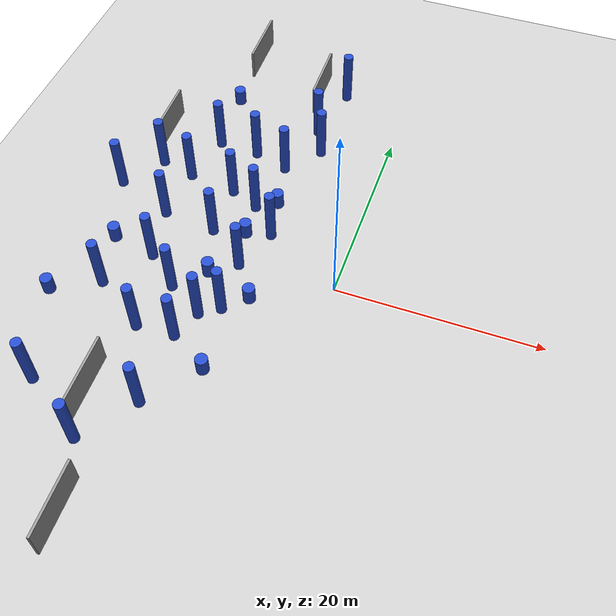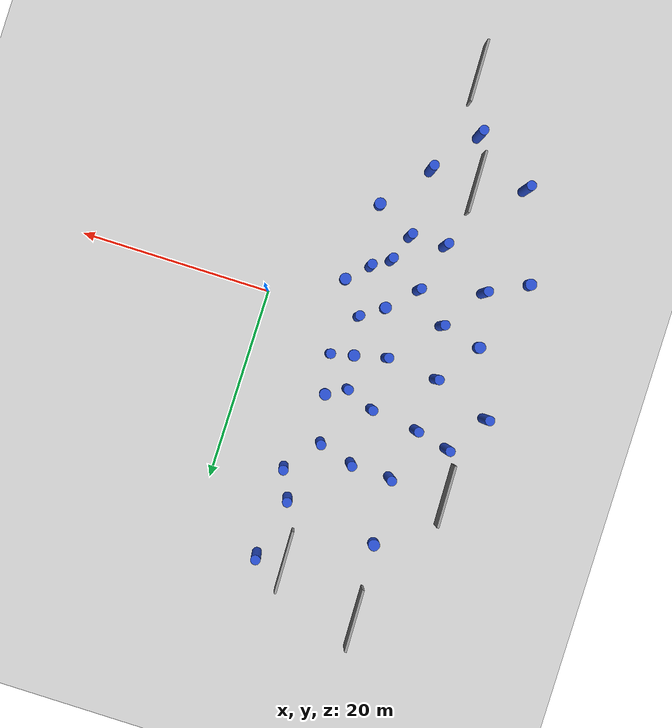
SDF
<sdf version="1.7">
 <world name="default">
  <model name="ground_plane">
   <static>1</static>
   <link name="link">
    <collision name="collision">
     <geometry><plane><normal>0 0 1</normal><size>100 100</size></plane></geometry>
     <surface><friction><ode><mu>100</mu><mu2>50</mu2></ode></friction></surface>
    </collision>
    <visual name="visual">
     <cast_shadows>0</cast_shadows>
     <geometry><plane><normal>0 0 1</normal><size>100 100</size></plane></geometry>
     <material>
      <script><uri>file://media/materials/scripts/gazebo.material</uri><name>Gazebo/Grey</name></script>
     </material>
    </visual>
   </link>
  </model>
  <model name="unit_box_0_0_clone_0_clone_clone_0_clone_clone_clone">
   <static>1</static>
   <pose>-9.88058 25.7727 1.66667 -0.000226 6e-06 0.022264</pose>
   <link name="link">
    <inertial>
     <mass>1</mass>
     <inertia>
      <ixx>0.166667</ixx>
      <ixy>0</ixy>
      <ixz>0</ixz>
      <iyy>0.166667</iyy>
      <iyz>0</iyz>
      <izz>0.166667</izz>
     </inertia>
    </inertial>
    <collision name="collision">
     <geometry><box><size>0.237691 6.53987 3.33454</size></box></geometry>
     <surface><contact><collide_without_contact>1</collide_without_contact></contact></surface>
    </collision>
    <visual name="visual">
     <geometry><box><size>0.237691 6.53987 3.33454</size></box></geometry>
     <material>
      <script><name>Gazebo/Grey</name><uri>file://media/materials/scripts/gazebo.material</uri></script>
     </material>
    </visual>
    <gravity>0</gravity>
   </link>
  </model>
  <model name="unit_box_0_0_clone_0_clone_clone_0_clone_clone_clone_1">
   <static>1</static>
   <pose>-16.9775 -16.9385 1.66667 -0.000226 6e-06 0.022264</pose>
   <link name="link">
    <inertial>
     <mass>1</mass>
     <inertia>
      <ixx>0.166667</ixx>
      <ixy>0</ixy>
      <ixz>0</ixz>
      <iyy>0.166667</iyy>
      <iyz>0</iyz>
      <izz>0.166667</izz>
     </inertia>
    </inertial>
    <collision name="collision">
     <geometry><box><size>0.237691 6.53987 3.33454</size></box></geometry>
     <surface><contact><collide_without_contact>1</collide_without_contact></contact></surface>
    </collision>
    <visual name="visual">
     <geometry><box><size>0.237691 6.53987 3.33454</size></box></geometry>
     <material>
      <script><name>Gazebo/Grey</name><uri>file://media/materials/scripts/gazebo.material</uri></script>
     </material>
    </visual>
    <gravity>0</gravity>
   </link>
  </model>
  <model name="unit_box_0_0_clone_0_clone_clone_0_clone_clone_clone_2">
   <static>1</static>
   <pose>-23.5976 14.4859 1.66667 -0.000226 6e-06 0.022264</pose>
   <link name="link">
    <inertial>
     <mass>1</mass>
     <inertia>
      <ixx>0.166667</ixx>
      <ixy>0</ixy>
      <ixz>0</ixz>
      <iyy>0.166667</iyy>
      <iyz>0</iyz>
      <izz>0.166667</izz>
     </inertia>
    </inertial>
    <collision name="collision">
     <geometry><box><size>0.237691 6.53987 3.33454</size></box></geometry>
     <surface><contact><collide_without_contact>1</collide_without_contact></contact></surface>
    </collision>
    <visual name="visual">
     <geometry><box><size>0.237691 6.53987 3.33454</size></box></geometry>
     <material>
      <script><name>Gazebo/Grey</name><uri>file://media/materials/scripts/gazebo.material</uri></script>
     </material>
    </visual>
    <gravity>0</gravity>
   </link>
  </model>
  <model name="unit_box_0_0_clone_0_clone_clone_0_clone_clone_clone_3">
   <static>1</static>
   <pose>-18.4558 29.2742 1.66667 -0.000226 6e-06 0.022264</pose>
   <link name="link">
    <inertial>
     <mass>1</mass>
     <inertia>
      <ixx>0.166667</ixx>
      <ixy>0</ixy>
      <ixz>0</ixz>
      <iyy>0.166667</iyy>
      <iyz>0</iyz>
      <izz>0.166667</izz>
     </inertia>
    </inertial>
    <collision name="collision">
     <geometry><box><size>0.237691 6.53987 3.33454</size></box></geometry>
     <surface><contact><collide_without_contact>1</collide_without_contact></contact></surface>
    </collision>
    <visual name="visual">
     <geometry><box><size>0.237691 6.53987 3.33454</size></box></geometry>
     <material>
      <script><name>Gazebo/Grey</name><uri>file://media/materials/scripts/gazebo.material</uri></script>
     </material>
    </visual>
    <gravity>0</gravity>
   </link>
  </model>
  <model name="unit_box_0_0_clone_0_clone_clone_0_clone_clone_clone_4">
   <static>1</static>
   <pose>-13.7812 -27.768 1.66667 -0.000226 6e-06 0.022264</pose>
   <link name="link">
    <inertial>
     <mass>1</mass>
     <inertia>
      <ixx>0.166667</ixx>
      <ixy>0</ixy>
      <ixz>0</ixz>
      <iyy>0.166667</iyy>
      <iyz>0</iyz>
      <izz>0.166667</izz>
     </inertia>
    </inertial>
    <collision name="collision">
     <geometry><box><size>0.237691 6.53987 3.33454</size></box></geometry>
     <surface><contact><collide_without_contact>1</collide_without_contact></contact></surface>
    </collision>
    <visual name="visual">
     <geometry><box><size>0.237691 6.53987 3.33454</size></box></geometry>
     <material>
      <script><name>Gazebo/Grey</name><uri>file://media/materials/scripts/gazebo.material</uri></script>
     </material>
    </visual>
    <gravity>0</gravity>
   </link>
  </model>
  <model name="unit_cylinder_0_clone_11">
   <static>1</static>
   <pose>-18.6647 9.01289 3 0 -0 0.001073</pose>
   <link name="link">
    <inertial>
     <mass>1</mass>
     <inertia><ixx>0.145833</ixx><ixy>0</ixy><ixz>0</ixz><iyy>0.145833</iyy><iyz>0</iyz><izz>0.125</izz></inertia>
    </inertial>
    <collision name="collision">
     <geometry><cylinder><radius>0.5</radius><length>6</length></cylinder></geometry>
     <surface><contact><collide_without_contact>1</collide_without_contact></contact></surface>
    </collision>
    <visual name="visual">
     <geometry><cylinder><radius>0.5</radius><length>6</length></cylinder></geometry>
     <material>
      <script><name>Gazebo/Blue</name><uri>file://media/materials/scripts/gazebo.material</uri></script>
     </material>
    </visual>
    <gravity>0</gravity>
   </link>
  </model>
  <model name="unit_cylinder_0_clone_17">
   <static>1</static>
   <pose>-15.8005 -21.5961 3 0 -0 0.001073</pose>
   <link name="link">
    <inertial>
     <mass>1</mass>
     <inertia><ixx>0.145833</ixx><ixy>0</ixy><ixz>0</ixz><iyy>0.145833</iyy><iyz>0</iyz><izz>0.125</izz></inertia>
    </inertial>
    <collision name="collision">
     <geometry><cylinder><radius>0.5</radius><length>6</length></cylinder></geometry>
     <surface><contact><collide_without_contact>1</collide_without_contact></contact></surface>
    </collision>
    <visual name="visual">
     <geometry><cylinder><radius>0.5</radius><length>6</length></cylinder></geometry>
     <material>
      <script><name>Gazebo/Blue</name><uri>file://media/materials/scripts/gazebo.material</uri></script>
     </material>
    </visual>
    <gravity>0</gravity>
   </link>
  </model>
  <model name="unit_cylinder_0_clone_18">
   <static>1</static>
   <pose>-21.0697 -6.42311 3 0 -0 0.001073</pose>
   <link name="link">
    <inertial>
     <mass>1</mass>
     <inertia><ixx>0.145833</ixx><ixy>0</ixy><ixz>0</ixz><iyy>0.145833</iyy><iyz>0</iyz><izz>0.125</izz></inertia>
    </inertial>
    <collision name="collision">
     <geometry><cylinder><radius>0.5</radius><length>6</length></cylinder></geometry>
     <surface><contact><collide_without_contact>1</collide_without_contact></contact></surface>
    </collision>
    <visual name="visual">
     <geometry><cylinder><radius>0.5</radius><length>6</length></cylinder></geometry>
     <material>
      <script><name>Gazebo/Blue</name><uri>file://media/materials/scripts/gazebo.material</uri></script>
     </material>
    </visual>
    <gravity>0</gravity>
   </link>
  </model>
  <model name="unit_cylinder_0_clone_58">
   <static>1</static>
   <pose>-9.77888 13.1498 3 0 -0 0.001073</pose>
   <link name="link">
    <inertial>
     <mass>1</mass>
     <inertia><ixx>0.145833</ixx><ixy>0</ixy><ixz>0</ixz><iyy>0.145833</iyy><iyz>0</iyz><izz>0.125</izz></inertia>
    </inertial>
    <collision name="collision">
     <geometry><cylinder><radius>0.5</radius><length>6</length></cylinder></geometry>
     <surface><contact><collide_without_contact>1</collide_without_contact></contact></surface>
    </collision>
    <visual name="visual">
     <geometry><cylinder><radius>0.5</radius><length>6</length></cylinder></geometry>
     <material>
      <script><name>Gazebo/Blue</name><uri>file://media/materials/scripts/gazebo.material</uri></script>
     </material>
    </visual>
    <gravity>0</gravity>
   </link>
  </model>
  <model name="unit_cylinder_1_clone_10">
   <static>1</static>
   <pose>-8.78291 8.32938 0.9 0 -0 0.001073</pose>
   <link name="link">
    <inertial>
     <mass>1</mass>
     <inertia><ixx>0.145833</ixx><ixy>0</ixy><ixz>0</ixz><iyy>0.145833</iyy><iyz>0</iyz><izz>0.125</izz></inertia>
    </inertial>
    <collision name="collision">
     <geometry><cylinder><radius>0.6</radius><length>1.8</length></cylinder></geometry>
     <surface><contact><collide_without_contact>1</collide_without_contact></contact></surface>
    </collision>
    <visual name="visual">
     <geometry><cylinder><radius>0.6</radius><length>1.8</length></cylinder></geometry>
     <material>
      <script><name>Gazebo/Blue</name><uri>file://media/materials/scripts/gazebo.material</uri></script>
     </material>
    </visual>
    <gravity>0</gravity>
   </link>
  </model>
  <model name="unit_cylinder_1_clone_11">
   <static>1</static>
   <pose>-12.0224 -2.00419 0.9 0 -0 0.001073</pose>
   <link name="link">
    <inertial>
     <mass>1</mass>
     <inertia><ixx>0.145833</ixx><ixy>0</ixy><ixz>0</ixz><iyy>0.145833</iyy><iyz>0</iyz><izz>0.125</izz></inertia>
    </inertial>
    <collision name="collision">
     <geometry><cylinder><radius>0.6</radius><length>1.8</length></cylinder></geometry>
     <surface><contact><collide_without_contact>1</collide_without_contact></contact></surface>
    </collision>
    <visual name="visual">
     <geometry><cylinder><radius>0.6</radius><length>1.8</length></cylinder></geometry>
     <material>
      <script><name>Gazebo/Blue</name><uri>file://media/materials/scripts/gazebo.material</uri></script>
     </material>
    </visual>
    <gravity>0</gravity>
   </link>
  </model>
  <model name="unit_cylinder_1_clone_12">
   <static>1</static>
   <pose>-8.28835 -12.0056 0.9 0 -0 0.001073</pose>
   <link name="link">
    <inertial>
     <mass>1</mass>
     <inertia><ixx>0.145833</ixx><ixy>0</ixy><ixz>0</ixz><iyy>0.145833</iyy><iyz>0</iyz><izz>0.125</izz></inertia>
    </inertial>
    <collision name="collision">
     <geometry><cylinder><radius>0.6</radius><length>1.8</length></cylinder></geometry>
     <surface><contact><collide_without_contact>1</collide_without_contact></contact></surface>
    </collision>
    <visual name="visual">
     <geometry><cylinder><radius>0.6</radius><length>1.8</length></cylinder></geometry>
     <material>
      <script><name>Gazebo/Blue</name><uri>file://media/materials/scripts/gazebo.material</uri></script>
     </material>
    </visual>
    <gravity>0</gravity>
   </link>
  </model>
  <model name="unit_cylinder_1_clone_13">
   <static>1</static>
   <pose>-18.1805 21.517 0.9 0 -0 0.001073</pose>
   <link name="link">
    <inertial>
     <mass>1</mass>
     <inertia><ixx>0.145833</ixx><ixy>0</ixy><ixz>0</ixz><iyy>0.145833</iyy><iyz>0</iyz><izz>0.125</izz></inertia>
    </inertial>
    <collision name="collision">
     <geometry><cylinder><radius>0.6</radius><length>1.8</length></cylinder></geometry>
     <surface><contact><collide_without_contact>1</collide_without_contact></contact></surface>
    </collision>
    <visual name="visual">
     <geometry><cylinder><radius>0.6</radius><length>1.8</length></cylinder></geometry>
     <material>
      <script><name>Gazebo/Blue</name><uri>file://media/materials/scripts/gazebo.material</uri></script>
     </material>
    </visual>
    <gravity>0</gravity>
   </link>
  </model>
  <model name="unit_cylinder_0_clone_3_clone_2">
   <static>1</static>
   <pose>-13.6112 2.87137 3 0 -0 0.001073</pose>
   <link name="link">
    <inertial>
     <mass>1</mass>
     <inertia><ixx>0.145833</ixx><ixy>0</ixy><ixz>0</ixz><iyy>0.145833</iyy><iyz>0</iyz><izz>0.125</izz></inertia>
    </inertial>
    <collision name="collision">
     <geometry><cylinder><radius>0.5</radius><length>6</length></cylinder></geometry>
     <surface><contact><collide_without_contact>1</collide_without_contact></contact></surface>
    </collision>
    <visual name="visual">
     <geometry><cylinder><radius>0.5</radius><length>6</length></cylinder></geometry>
     <material>
      <script><name>Gazebo/Blue</name><uri>file://media/materials/scripts/gazebo.material</uri></script>
     </material>
    </visual>
    <gravity>0</gravity>
   </link>
  </model>
  <model name="unit_cylinder_0_clone_3_clone_3">
   <static>1</static>
   <pose>-15.8614 -9.81445 3 0 -0 0.001073</pose>
   <link name="link">
    <inertial>
     <mass>1</mass>
     <inertia><ixx>0.145833</ixx><ixy>0</ixy><ixz>0</ixz><iyy>0.145833</iyy><iyz>0</iyz><izz>0.125</izz></inertia>
    </inertial>
    <collision name="collision">
     <geometry><cylinder><radius>0.5</radius><length>6</length></cylinder></geometry>
     <surface><contact><collide_without_contact>1</collide_without_contact></contact></surface>
    </collision>
    <visual name="visual">
     <geometry><cylinder><radius>0.5</radius><length>6</length></cylinder></geometry>
     <material>
      <script><name>Gazebo/Blue</name><uri>file://media/materials/scripts/gazebo.material</uri></script>
     </material>
    </visual>
    <gravity>0</gravity>
   </link>
  </model>
  <model name="unit_cylinder_0_clone_3_clone_15">
   <static>1</static>
   <pose>-19.0398 3.44436 3 0 -0 0.001073</pose>
   <link name="link">
    <inertial>
     <mass>1</mass>
     <inertia><ixx>0.145833</ixx><ixy>0</ixy><ixz>0</ixz><iyy>0.145833</iyy><iyz>0</iyz><izz>0.125</izz></inertia>
    </inertial>
    <collision name="collision">
     <geometry><cylinder><radius>0.5</radius><length>6</length></cylinder></geometry>
     <surface><contact><collide_without_contact>1</collide_without_contact></contact></surface>
    </collision>
    <visual name="visual">
     <geometry><cylinder><radius>0.5</radius><length>6</length></cylinder></geometry>
     <material>
      <script><name>Gazebo/Blue</name><uri>file://media/materials/scripts/gazebo.material</uri></script>
     </material>
    </visual>
    <gravity>0</gravity>
   </link>
  </model>
  <model name="unit_cylinder_1_clone_19_clone_0">
   <static>1</static>
   <pose>-7.20572 -3.59145 0.9 0 -0 0.001073</pose>
   <link name="link">
    <inertial>
     <mass>1</mass>
     <inertia><ixx>0.145833</ixx><ixy>0</ixy><ixz>0</ixz><iyy>0.145833</iyy><iyz>0</iyz><izz>0.125</izz></inertia>
    </inertial>
    <collision name="collision">
     <geometry><cylinder><radius>0.6</radius><length>1.8</length></cylinder></geometry>
     <surface><contact><collide_without_contact>1</collide_without_contact></contact></surface>
    </collision>
    <visual name="visual">
     <geometry><cylinder><radius>0.6</radius><length>1.8</length></cylinder></geometry>
     <material>
      <script><name>Gazebo/Blue</name><uri>file://media/materials/scripts/gazebo.material</uri></script>
     </material>
    </visual>
    <gravity>0</gravity>
   </link>
  </model>
  <model name="unit_cylinder_1_clone_19_clone_7">
   <static>1</static>
   <pose>-22.4422 -1 0.9 0 -0 0.001073</pose>
   <link name="link">
    <inertial>
     <mass>1</mass>
     <inertia><ixx>0.145833</ixx><ixy>0</ixy><ixz>0</ixz><iyy>0.145833</iyy><iyz>0</iyz><izz>0.125</izz></inertia>
    </inertial>
    <collision name="collision">
     <geometry><cylinder><radius>0.6</radius><length>1.8</length></cylinder></geometry>
     <surface><contact><collide_without_contact>1</collide_without_contact></contact></surface>
    </collision>
    <visual name="visual">
     <geometry><cylinder><radius>0.6</radius><length>1.8</length></cylinder></geometry>
     <material>
      <script><name>Gazebo/Blue</name><uri>file://media/materials/scripts/gazebo.material</uri></script>
     </material>
    </visual>
    <gravity>0</gravity>
   </link>
  </model>
  <model name="unit_cylinder_1_clone_19_clone_8">
   <static>1</static>
   <pose>-25.4789 -8.73219 0.9 0 -0 0.001073</pose>
   <link name="link">
    <inertial>
     <mass>1</mass>
     <inertia><ixx>0.145833</ixx><ixy>0</ixy><ixz>0</ixz><iyy>0.145833</iyy><iyz>0</iyz><izz>0.125</izz></inertia>
    </inertial>
    <collision name="collision">
     <geometry><cylinder><radius>0.6</radius><length>1.8</length></cylinder></geometry>
     <surface><contact><collide_without_contact>1</collide_without_contact></contact></surface>
    </collision>
    <visual name="visual">
     <geometry><cylinder><radius>0.6</radius><length>1.8</length></cylinder></geometry>
     <material>
      <script><name>Gazebo/Blue</name><uri>file://media/materials/scripts/gazebo.material</uri></script>
     </material>
    </visual>
    <gravity>0</gravity>
   </link>
  </model>
  <model name="unit_cylinder_1_clone_19_clone_14">
   <static>1</static>
   <pose>-10.4201 3.62822 0.9 0 -0 0.001073</pose>
   <link name="link">
    <inertial>
     <mass>1</mass>
     <inertia><ixx>0.145833</ixx><ixy>0</ixy><ixz>0</ixz><iyy>0.145833</iyy><iyz>0</iyz><izz>0.125</izz></inertia>
    </inertial>
    <collision name="collision">
     <geometry><cylinder><radius>0.6</radius><length>1.8</length></cylinder></geometry>
     <surface><contact><collide_without_contact>1</collide_without_contact></contact></surface>
    </collision>
    <visual name="visual">
     <geometry><cylinder><radius>0.6</radius><length>1.8</length></cylinder></geometry>
     <material>
      <script><name>Gazebo/Blue</name><uri>file://media/materials/scripts/gazebo.material</uri></script>
     </material>
    </visual>
    <gravity>0</gravity>
   </link>
  </model>
  <model name="unit_cylinder_0_clone_3_clone_clone_0">
   <static>1</static>
   <pose>-12.133 -9.66191 3 0 -0 0.001073</pose>
   <link name="link">
    <inertial>
     <mass>1</mass>
     <inertia><ixx>0.145833</ixx><ixy>0</ixy><ixz>0</ixz><iyy>0.145833</iyy><iyz>0</iyz><izz>0.125</izz></inertia>
    </inertial>
    <collision name="collision">
     <geometry><cylinder><radius>0.5</radius><length>6</length></cylinder></geometry>
     <surface><contact><collide_without_contact>1</collide_without_contact></contact></surface>
    </collision>
    <visual name="visual">
     <geometry><cylinder><radius>0.5</radius><length>6</length></cylinder></geometry>
     <material>
      <script><name>Gazebo/Blue</name><uri>file://media/materials/scripts/gazebo.material</uri></script>
     </material>
    </visual>
    <gravity>0</gravity>
   </link>
  </model>
  <model name="unit_cylinder_0_clone_3_clone_clone_1">
   <static>1</static>
   <pose>-13.6781 8.34432 3 0 -0 0.001073</pose>
   <link name="link">
    <inertial>
     <mass>1</mass>
     <inertia><ixx>0.145833</ixx><ixy>0</ixy><ixz>0</ixz><iyy>0.145833</iyy><iyz>0</iyz><izz>0.125</izz></inertia>
    </inertial>
    <collision name="collision">
     <geometry><cylinder><radius>0.5</radius><length>6</length></cylinder></geometry>
     <surface><contact><collide_without_contact>1</collide_without_contact></contact></surface>
    </collision>
    <visual name="visual">
     <geometry><cylinder><radius>0.5</radius><length>6</length></cylinder></geometry>
     <material>
      <script><name>Gazebo/Blue</name><uri>file://media/materials/scripts/gazebo.material</uri></script>
     </material>
    </visual>
    <gravity>0</gravity>
   </link>
  </model>
  <model name="unit_cylinder_0_clone_3_clone_clone_4">
   <static>1</static>
   <pose>-6.96125 16.6675 3 0 -0 0.001073</pose>
   <link name="link">
    <inertial>
     <mass>1</mass>
     <inertia><ixx>0.145833</ixx><ixy>0</ixy><ixz>0</ixz><iyy>0.145833</iyy><iyz>0</iyz><izz>0.125</izz></inertia>
    </inertial>
    <collision name="collision">
     <geometry><cylinder><radius>0.5</radius><length>6</length></cylinder></geometry>
     <surface><contact><collide_without_contact>1</collide_without_contact></contact></surface>
    </collision>
    <visual name="visual">
     <geometry><cylinder><radius>0.5</radius><length>6</length></cylinder></geometry>
     <material>
      <script><name>Gazebo/Blue</name><uri>file://media/materials/scripts/gazebo.material</uri></script>
     </material>
    </visual>
    <gravity>0</gravity>
   </link>
  </model>
  <model name="unit_cylinder_0_clone_3_clone_clone_10">
   <static>1</static>
   <pose>-14.631 -4.6998 3 0 -0 0.001073</pose>
   <link name="link">
    <inertial>
     <mass>1</mass>
     <inertia><ixx>0.145833</ixx><ixy>0</ixy><ixz>0</ixz><iyy>0.145833</iyy><iyz>0</iyz><izz>0.125</izz></inertia>
    </inertial>
    <collision name="collision">
     <geometry><cylinder><radius>0.5</radius><length>6</length></cylinder></geometry>
     <surface><contact><collide_without_contact>1</collide_without_contact></contact></surface>
    </collision>
    <visual name="visual">
     <geometry><cylinder><radius>0.5</radius><length>6</length></cylinder></geometry>
     <material>
      <script><name>Gazebo/Blue</name><uri>file://media/materials/scripts/gazebo.material</uri></script>
     </material>
    </visual>
    <gravity>0</gravity>
   </link>
  </model>
  <model name="unit_cylinder_0_clone_3_clone_clone_15">
   <static>1</static>
   <pose>-7.9678 4.19694 3 0 -0 0.001073</pose>
   <link name="link">
    <inertial>
     <mass>1</mass>
     <inertia><ixx>0.145833</ixx><ixy>0</ixy><ixz>0</ixz><iyy>0.145833</iyy><iyz>0</iyz><izz>0.125</izz></inertia>
    </inertial>
    <collision name="collision">
     <geometry><cylinder><radius>0.5</radius><length>6</length></cylinder></geometry>
     <surface><contact><collide_without_contact>1</collide_without_contact></contact></surface>
    </collision>
    <visual name="visual">
     <geometry><cylinder><radius>0.5</radius><length>6</length></cylinder></geometry>
     <material>
      <script><name>Gazebo/Blue</name><uri>file://media/materials/scripts/gazebo.material</uri></script>
     </material>
    </visual>
    <gravity>0</gravity>
   </link>
  </model>
  <model name="unit_cylinder_0_clone_3_clone_clone_16">
   <static>1</static>
   <pose>-12.1437 -16.7808 3 0 -0 0.001073</pose>
   <link name="link">
    <inertial>
     <mass>1</mass>
     <inertia><ixx>0.145833</ixx><ixy>0</ixy><ixz>0</ixz><iyy>0.145833</iyy><iyz>0</iyz><izz>0.125</izz></inertia>
    </inertial>
    <collision name="collision">
     <geometry><cylinder><radius>0.5</radius><length>6</length></cylinder></geometry>
     <surface><contact><collide_without_contact>1</collide_without_contact></contact></surface>
    </collision>
    <visual name="visual">
     <geometry><cylinder><radius>0.5</radius><length>6</length></cylinder></geometry>
     <material>
      <script><name>Gazebo/Blue</name><uri>file://media/materials/scripts/gazebo.material</uri></script>
     </material>
    </visual>
    <gravity>0</gravity>
   </link>
  </model>
  <model name="unit_cylinder_0_clone_3_clone_clone_17">
   <static>1</static>
   <pose>-13.3455 14.2455 3 0 -0 0.001073</pose>
   <link name="link">
    <inertial>
     <mass>1</mass>
     <inertia><ixx>0.145833</ixx><ixy>0</ixy><ixz>0</ixz><iyy>0.145833</iyy><iyz>0</iyz><izz>0.125</izz></inertia>
    </inertial>
    <collision name="collision">
     <geometry><cylinder><radius>0.5</radius><length>6</length></cylinder></geometry>
     <surface><contact><collide_without_contact>1</collide_without_contact></contact></surface>
    </collision>
    <visual name="visual">
     <geometry><cylinder><radius>0.5</radius><length>6</length></cylinder></geometry>
     <material>
      <script><name>Gazebo/Blue</name><uri>file://media/materials/scripts/gazebo.material</uri></script>
     </material>
    </visual>
    <gravity>0</gravity>
   </link>
  </model>
  <model name="unit_cylinder_0_clone_3_clone_clone_18">
   <static>1</static>
   <pose>-17.9554 -1.92572 3 0 -0 0.001073</pose>
   <link name="link">
    <inertial>
     <mass>1</mass>
     <inertia><ixx>0.145833</ixx><ixy>0</ixy><ixz>0</ixz><iyy>0.145833</iyy><iyz>0</iyz><izz>0.125</izz></inertia>
    </inertial>
    <collision name="collision">
     <geometry><cylinder><radius>0.5</radius><length>6</length></cylinder></geometry>
     <surface><contact><collide_without_contact>1</collide_without_contact></contact></surface>
    </collision>
    <visual name="visual">
     <geometry><cylinder><radius>0.5</radius><length>6</length></cylinder></geometry>
     <material>
      <script><name>Gazebo/Blue</name><uri>file://media/materials/scripts/gazebo.material</uri></script>
     </material>
    </visual>
    <gravity>0</gravity>
   </link>
  </model>
  <model name="unit_cylinder_0_clone_3_clone_clone_25">
   <static>1</static>
   <pose>-17.5627 14.4548 3 0 -0 0.001073</pose>
   <link name="link">
    <inertial>
     <mass>1</mass>
     <inertia><ixx>0.145833</ixx><ixy>0</ixy><ixz>0</ixz><iyy>0.145833</iyy><iyz>0</iyz><izz>0.125</izz></inertia>
    </inertial>
    <collision name="collision">
     <geometry><cylinder><radius>0.5</radius><length>6</length></cylinder></geometry>
     <surface><contact><collide_without_contact>1</collide_without_contact></contact></surface>
    </collision>
    <visual name="visual">
     <geometry><cylinder><radius>0.5</radius><length>6</length></cylinder></geometry>
     <material>
      <script><name>Gazebo/Blue</name><uri>file://media/materials/scripts/gazebo.material</uri></script>
     </material>
    </visual>
    <gravity>0</gravity>
   </link>
  </model>
  <model name="unit_cylinder_0_clone_3_clone_clone_26">
   <static>1</static>
   <pose>-21.9801 -17.7518 3 0 -0 0.001073</pose>
   <link name="link">
    <inertial>
     <mass>1</mass>
     <inertia><ixx>0.145833</ixx><ixy>0</ixy><ixz>0</ixz><iyy>0.145833</iyy><iyz>0</iyz><izz>0.125</izz></inertia>
    </inertial>
    <collision name="collision">
     <geometry><cylinder><radius>0.5</radius><length>6</length></cylinder></geometry>
     <surface><contact><collide_without_contact>1</collide_without_contact></contact></surface>
    </collision>
    <visual name="visual">
     <geometry><cylinder><radius>0.5</radius><length>6</length></cylinder></geometry>
     <material>
      <script><name>Gazebo/Blue</name><uri>file://media/materials/scripts/gazebo.material</uri></script>
     </material>
    </visual>
    <gravity>0</gravity>
   </link>
  </model>
  <model name="unit_cylinder_0_clone_3_clone_clone_36">
   <static>1</static>
   <pose>-8.27968 19.5969 3 0 -0 0.001073</pose>
   <link name="link">
    <inertial>
     <mass>1</mass>
     <inertia><ixx>0.145833</ixx><ixy>0</ixy><ixz>0</ixz><iyy>0.145833</iyy><iyz>0</iyz><izz>0.125</izz></inertia>
    </inertial>
    <collision name="collision">
     <geometry><cylinder><radius>0.5</radius><length>6</length></cylinder></geometry>
     <surface><contact><collide_without_contact>1</collide_without_contact></contact></surface>
    </collision>
    <visual name="visual">
     <geometry><cylinder><radius>0.5</radius><length>6</length></cylinder></geometry>
     <material>
      <script><name>Gazebo/Blue</name><uri>file://media/materials/scripts/gazebo.material</uri></script>
     </material>
    </visual>
    <gravity>0</gravity>
   </link>
  </model>
  <model name="unit_cylinder_0_clone_3_clone_clone_37">
   <static>1</static>
   <pose>-7 26 3 0 -0 0.001073</pose>
   <link name="link">
    <inertial>
     <mass>1</mass>
     <inertia><ixx>0.145833</ixx><ixy>0</ixy><ixz>0</ixz><iyy>0.145833</iyy><iyz>0</iyz><izz>0.125</izz></inertia>
    </inertial>
    <collision name="collision">
     <geometry><cylinder><radius>0.5</radius><length>6</length></cylinder></geometry>
     <surface><contact><collide_without_contact>1</collide_without_contact></contact></surface>
    </collision>
    <visual name="visual">
     <geometry><cylinder><radius>0.5</radius><length>6</length></cylinder></geometry>
     <material>
      <script><name>Gazebo/Blue</name><uri>file://media/materials/scripts/gazebo.material</uri></script>
     </material>
    </visual>
    <gravity>0</gravity>
   </link>
  </model>
  <model name="unit_cylinder_0_clone_3_clone_clone_43">
   <static>1</static>
   <pose>-9.59404 -0.291186 3 0 -0 0.001073</pose>
   <link name="link">
    <inertial>
     <mass>1</mass>
     <inertia><ixx>0.145833</ixx><ixy>0</ixy><ixz>0</ixz><iyy>0.145833</iyy><iyz>0</iyz><izz>0.125</izz></inertia>
    </inertial>
    <collision name="collision">
     <geometry><cylinder><radius>0.5</radius><length>6</length></cylinder></geometry>
     <surface><contact><collide_without_contact>1</collide_without_contact></contact></surface>
    </collision>
    <visual name="visual">
     <geometry><cylinder><radius>0.5</radius><length>6</length></cylinder></geometry>
     <material>
      <script><name>Gazebo/Blue</name><uri>file://media/materials/scripts/gazebo.material</uri></script>
     </material>
    </visual>
    <gravity>0</gravity>
   </link>
  </model>
  <model name="unit_cylinder_0_clone_3_clone_clone_44">
   <static>1</static>
   <pose>-11.0366 -6.77384 3 0 -0 0.001073</pose>
   <link name="link">
    <inertial>
     <mass>1</mass>
     <inertia><ixx>0.145833</ixx><ixy>0</ixy><ixz>0</ixz><iyy>0.145833</iyy><iyz>0</iyz><izz>0.125</izz></inertia>
    </inertial>
    <collision name="collision">
     <geometry><cylinder><radius>0.5</radius><length>6</length></cylinder></geometry>
     <surface><contact><collide_without_contact>1</collide_without_contact></contact></surface>
    </collision>
    <visual name="visual">
     <geometry><cylinder><radius>0.5</radius><length>6</length></cylinder></geometry>
     <material>
      <script><name>Gazebo/Blue</name><uri>file://media/materials/scripts/gazebo.material</uri></script>
     </material>
    </visual>
    <gravity>0</gravity>
   </link>
  </model>
  <model name="unit_cylinder_0_clone_3_clone_clone_53">
   <static>1</static>
   <pose>-25.0579 5.8139 3 0 -0 0.001073</pose>
   <link name="link">
    <inertial>
     <mass>1</mass>
     <inertia><ixx>0.145833</ixx><ixy>0</ixy><ixz>0</ixz><iyy>0.145833</iyy><iyz>0</iyz><izz>0.125</izz></inertia>
    </inertial>
    <collision name="collision">
     <geometry><cylinder><radius>0.5</radius><length>6</length></cylinder></geometry>
     <surface><contact><collide_without_contact>1</collide_without_contact></contact></surface>
    </collision>
    <visual name="visual">
     <geometry><cylinder><radius>0.5</radius><length>6</length></cylinder></geometry>
     <material>
      <script><name>Gazebo/Blue</name><uri>file://media/materials/scripts/gazebo.material</uri></script>
     </material>
    </visual>
    <gravity>0</gravity>
   </link>
  </model>
  <model name="unit_cylinder_0_clone_3_clone_clone_54">
   <static>1</static>
   <pose>-22.2226 9.90123 3 0 -0 0.001073</pose>
   <link name="link">
    <inertial>
     <mass>1</mass>
     <inertia><ixx>0.145833</ixx><ixy>0</ixy><ixz>0</ixz><iyy>0.145833</iyy><iyz>0</iyz><izz>0.125</izz></inertia>
    </inertial>
    <collision name="collision">
     <geometry><cylinder><radius>0.5</radius><length>6</length></cylinder></geometry>
     <surface><contact><collide_without_contact>1</collide_without_contact></contact></surface>
    </collision>
    <visual name="visual">
     <geometry><cylinder><radius>0.5</radius><length>6</length></cylinder></geometry>
     <material>
      <script><name>Gazebo/Blue</name><uri>file://media/materials/scripts/gazebo.material</uri></script>
     </material>
    </visual>
    <gravity>0</gravity>
   </link>
  </model>
  <model name="unit_cylinder_0_clone_3_clone_clone_55">
   <static>1</static>
   <pose>-10.738 7.10761 3 0 -0 0.001073</pose>
   <link name="link">
    <inertial>
     <mass>1</mass>
     <inertia><ixx>0.145833</ixx><ixy>0</ixy><ixz>0</ixz><iyy>0.145833</iyy><iyz>0</iyz><izz>0.125</izz></inertia>
    </inertial>
    <collision name="collision">
     <geometry><cylinder><radius>0.5</radius><length>6</length></cylinder></geometry>
     <surface><contact><collide_without_contact>1</collide_without_contact></contact></surface>
    </collision>
    <visual name="visual">
     <geometry><cylinder><radius>0.5</radius><length>6</length></cylinder></geometry>
     <material>
      <script><name>Gazebo/Blue</name><uri>file://media/materials/scripts/gazebo.material</uri></script>
     </material>
    </visual>
    <gravity>0</gravity>
   </link>
  </model>
  <model name="unit_cylinder_0_clone_3_clone_clone_59">
   <static>1</static>
   <pose>-9.21321 -5.55174 3 0 -0 0.001073</pose>
   <link name="link">
    <inertial>
     <mass>1</mass>
     <inertia><ixx>0.145833</ixx><ixy>0</ixy><ixz>0</ixz><iyy>0.145833</iyy><iyz>0</iyz><izz>0.125</izz></inertia>
    </inertial>
    <collision name="collision">
     <geometry><cylinder><radius>0.5</radius><length>6</length></cylinder></geometry>
     <surface><contact><collide_without_contact>1</collide_without_contact></contact></surface>
    </collision>
    <visual name="visual">
     <geometry><cylinder><radius>0.5</radius><length>6</length></cylinder></geometry>
     <material>
      <script><name>Gazebo/Blue</name><uri>file://media/materials/scripts/gazebo.material</uri></script>
     </material>
    </visual>
    <gravity>0</gravity>
   </link>
  </model>
 </world>
</sdf>
